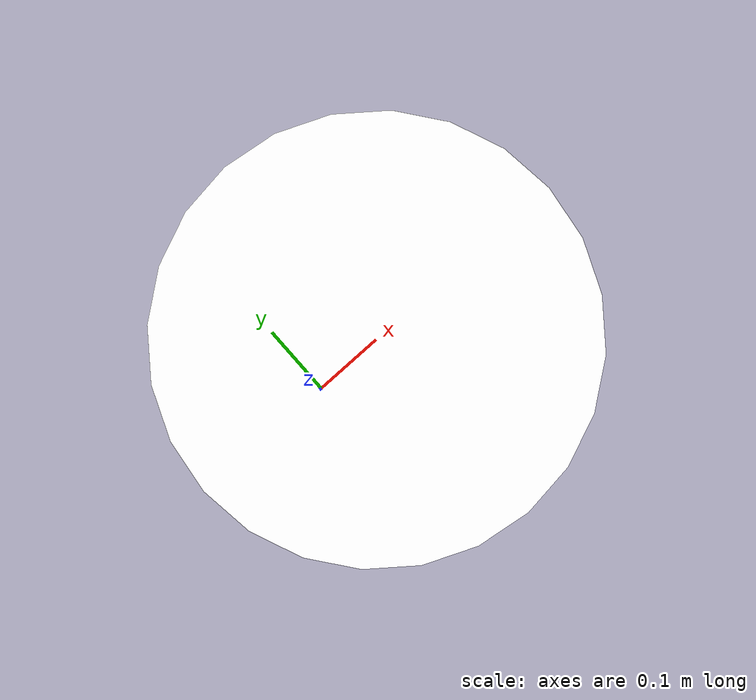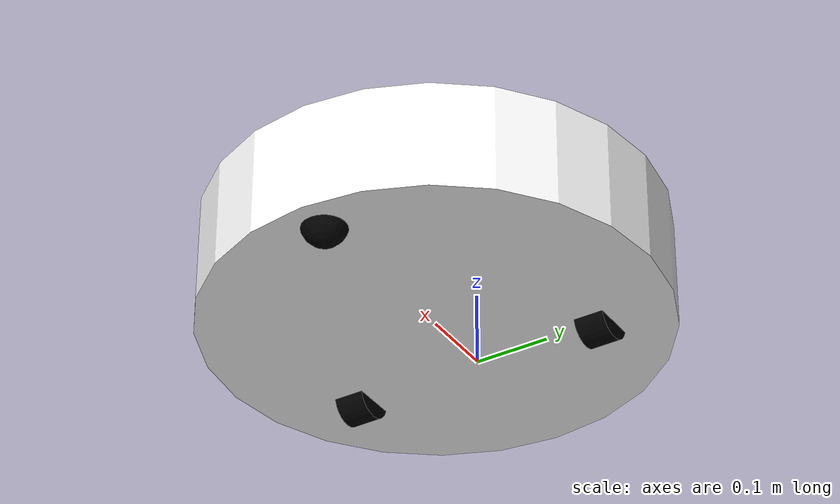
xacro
<?xml version="1.0"?>
<robot xmlns:xacro="http://www.ros.org/wiki/xacro" >

    <xacro:include filename="inertial_macros.xacro"/>

    <material name="white">
        <color rgba="1 1 1 1"/>
    </material>

    <material name="orange">
        <color rgba="1.0 0.4 0.0 1.0"/>
    </material>

    <material name="black">
        <color rgba="0 0 0 1"/>
    </material>

    <material name="red">
        <color rgba="1 0 0 1"/>
    </material>

    <link name="base_link">
    </link>

    <joint name="chasis_joint" type="fixed">

        <origin xyz="0.1 0 0.0375"/>
        <parent link="base_link"/>
        <child link="chasis"/>

    </joint>

    <link name="chasis">

        <visual>
            <origin xyz="0 0 0.03"/>
            <geometry>
                <cylinder length="0.15" radius="0.3"/>
            </geometry>
            <material name="white"/>
        </visual>

        <collision>
            <origin xyz="0 0 0.03"/>
            <geometry>
                <cylinder length="0.15" radius="0.3"/>
            </geometry>
        </collision>
        <xacro:inertial_cylinder mass="0.5" radius="0.3" length="0.15">
            <origin xyz="0 0 0.03"/>
        </xacro:inertial_cylinder>

    </link>

    <gazebo reference="chasis">
        <material>
            Gazebo/White
        </material>
    </gazebo>

    <joint name="left-wheel-joint" type="continuous">
        <parent link="base_link" />
        <child link="left_wheel"/>
        <origin xyz="0 0.175 0" rpy="-${pi/2} 0 0"/>
        <axis xyz="0 0 1"/>
    </joint>

    <link name="left_wheel">
        <visual>
            <geometry>
                <cylinder radius="0.03" length="0.04"/>
            </geometry>
            <material name="black"/>
        </visual>

        <collision>
            <geometry>
                <cylinder radius="0.03" length="0.04"/>
            </geometry>
        </collision>
        <xacro:inertial_cylinder mass="0.1" radius="0.3" length="0.15">
            <origin xyz="0 0 0"/>
        </xacro:inertial_cylinder>
    </link>

    <gazebo reference="left_wheel">
        <material>
            Gazebo/Black
        </material>
    </gazebo>

    <joint name="right-wheel-joint" type="continuous">
        <parent link="base_link" />
        <child link="right_wheel"/>
        <origin xyz="0 -0.175 0" rpy="${pi/2} 0 0"/>
        <axis xyz="0 0 -1"/>
    </joint>

    <link name="right_wheel">
        <visual>
            <geometry>
                <cylinder radius="0.03" length="0.04"/>
            </geometry>
            <material name="black"/>
        </visual>
        <collision>
            <geometry>
                <cylinder radius="0.03" length="0.04"/>
            </geometry>
        </collision>
        <xacro:inertial_cylinder mass="0.1" radius="0.3" length="0.15">
            <origin xyz="0 0 0"/>
        </xacro:inertial_cylinder>
    </link>

    <gazebo reference="right_wheel">
        <material>
            Gazebo/Black
        </material>
    </gazebo>

    <joint name="caster_wheel_joint" type="fixed">
        <parent link="chasis"/>
        <child link="caster_wheel"/>
        <origin xyz="0.25 0 -0.0375"/>
    </joint>

    <link name="caster_wheel">

        <visual>
            <geometry>
                <sphere radius="0.03"/>
            </geometry>
            <material name="black"/>
        </visual>

        <collision>
            <geometry>
                <sphere radius="0.03"/>
            </geometry>
        </collision>

        <xacro:inertial_sphere mass="0.1" radius="0.3">
            <origin xyz="0 0 0"/>
        </xacro:inertial_sphere>

    </link>

    <gazebo reference="caster_wheel">
        <material>
            Gazebo/Black
        </material>
        <mu1 value="0.001"/>
        <mu2 value="0.001"/>
    </gazebo>

</robot>
